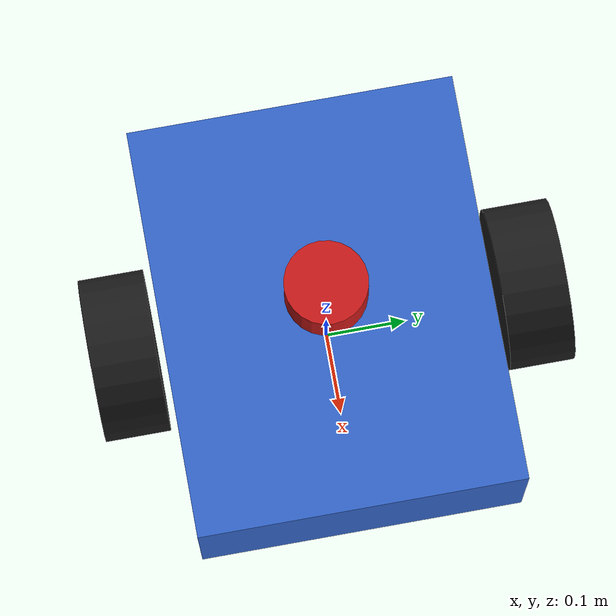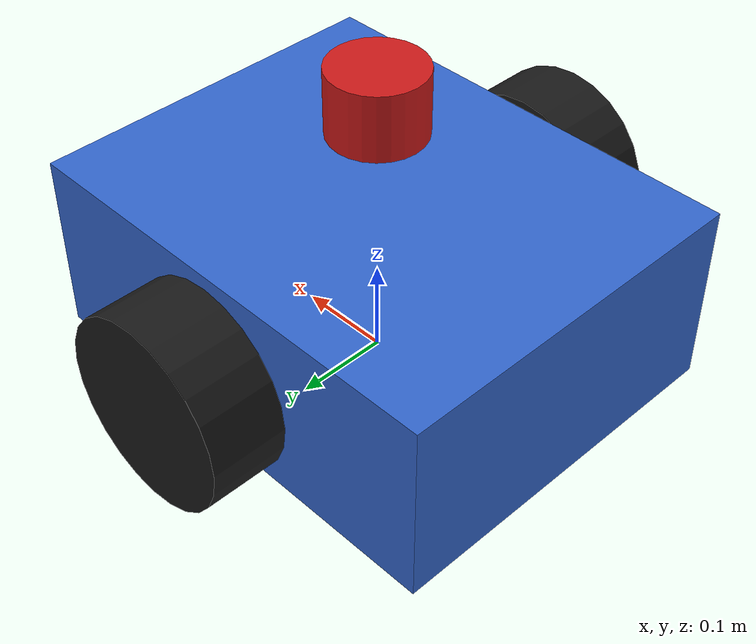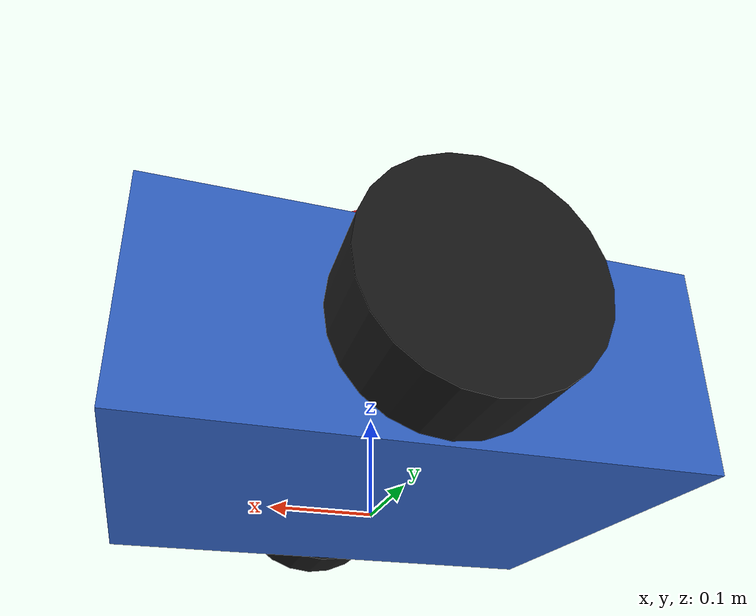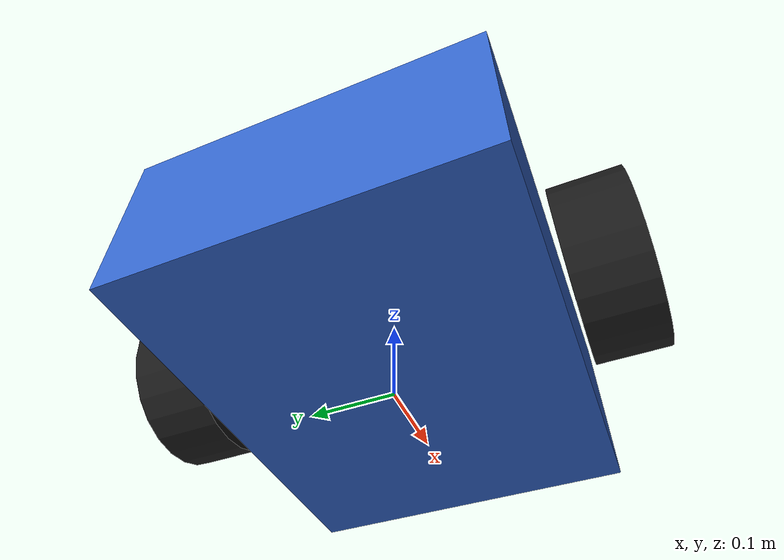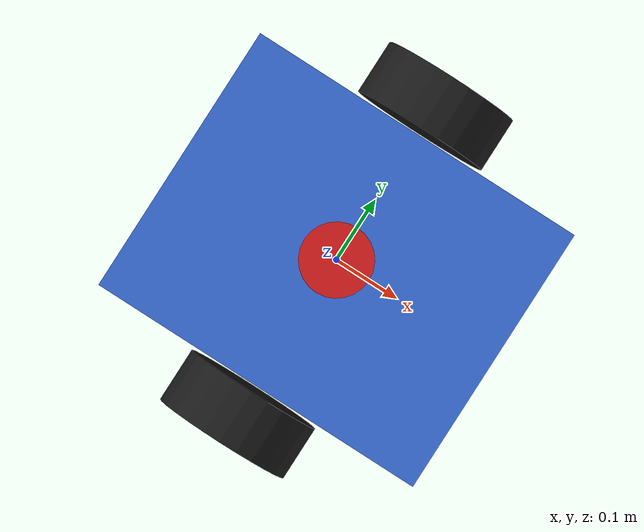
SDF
<?xml version="1.0"?>
<sdf version="1.6">
  <model name="rover">

    <!-- Base Link - CENTER OF ROBOT -->
    <link name="base_link">
      <pose>0 0 0.1 0 0 0</pose>
      <inertial>
        <mass>10.0</mass>
        <pose>0 0 0 0 0 0</pose>
        <inertia>
          <ixx>0.1</ixx><ixy>0</ixy><ixz>0</ixz>
          <iyy>0.15</iyy><iyz>0</iyz><izz>0.2</izz>
        </inertia>
      </inertial>
      <collision name="collision">
        <geometry>
          <box><size>0.5 0.4 0.2</size></box>
        </geometry>
      </collision>
      <visual name="visual">
        <geometry>
          <box><size>0.5 0.4 0.2</size></box>
        </geometry>
        <material>
          <ambient>0.2 0.4 0.8 1</ambient>
          <diffuse>0.2 0.4 0.8 1</diffuse>
        </material>
      </visual>
    </link>

    <!-- Left Drive Wheel - AT CENTER, LEFT SIDE -->
    <link name="left_wheel">
      <pose>0 0.25 0.1 -1.5707963 0 0</pose>
      <inertial>
        <mass>1.0</mass>
        <inertia>
          <ixx>0.005</ixx><ixy>0</ixy><ixz>0</ixz>
          <iyy>0.005</iyy><iyz>0</iyz><izz>0.005</izz>
        </inertia>
      </inertial>
      <collision name="collision">
        <geometry>
          <cylinder><radius>0.1</radius><length>0.08</length></cylinder>
        </geometry>
        <surface>
          <friction>
            <ode>
              <mu>100.0</mu>
              <mu2>50.0</mu2>
            </ode>
          </friction>
          <contact>
            <ode>
              <kp>10000000.0</kp>
              <kd>1.0</kd>
            </ode>
          </contact>
        </surface>
      </collision>
      <visual name="visual">
        <geometry>
          <cylinder><radius>0.1</radius><length>0.08</length></cylinder>
        </geometry>
        <material>
          <ambient>0.1 0.1 0.1 1</ambient>
          <diffuse>0.1 0.1 0.1 1</diffuse>
        </material>
      </visual>
    </link>

    <joint name="left_wheel_joint" type="revolute">
      <parent>base_link</parent>
      <child>left_wheel</child>
      <axis>
        <xyz>0 0 1</xyz>
      </axis>
    </joint>

    <!-- Right Drive Wheel - AT CENTER, RIGHT SIDE -->
    <link name="right_wheel">
      <pose>0 -0.25 0.1 -1.5707963 0 0</pose>
      <inertial>
        <mass>1.0</mass>
        <inertia>
          <ixx>0.005</ixx><ixy>0</ixy><ixz>0</ixz>
          <iyy>0.005</iyy><iyz>0</iyz><izz>0.005</izz>
        </inertia>
      </inertial>
      <collision name="collision">
        <geometry>
          <cylinder><radius>0.1</radius><length>0.08</length></cylinder>
        </geometry>
        <surface>
          <friction>
            <ode>
              <mu>100.0</mu>
              <mu2>50.0</mu2>
            </ode>
          </friction>
          <contact>
            <ode>
              <kp>10000000.0</kp>
              <kd>1.0</kd>
            </ode>
          </contact>
        </surface>
      </collision>
      <visual name="visual">
        <geometry>
          <cylinder><radius>0.1</radius><length>0.08</length></cylinder>
        </geometry>
        <material>
          <ambient>0.1 0.1 0.1 1</ambient>
          <diffuse>0.1 0.1 0.1 1</diffuse>
        </material>
      </visual>
    </link>

    <joint name="right_wheel_joint" type="revolute">
      <parent>base_link</parent>
      <child>right_wheel</child>
      <axis>
        <xyz>0 0 1</xyz>
      </axis>
    </joint>

    <!-- Caster Wheel - AT BACK FOR STABILITY -->
    <link name="caster_wheel">
      <pose>-0.2 0 0.05 0 0 0</pose>
      <inertial>
        <mass>0.5</mass>
        <inertia>
          <ixx>0.001</ixx><ixy>0</ixy><ixz>0</ixz>
          <iyy>0.001</iyy><iyz>0</iyz><izz>0.001</izz>
        </inertia>
      </inertial>
      <collision name="collision">
        <geometry>
          <sphere><radius>0.05</radius></sphere>
        </geometry>
        <surface>
          <friction>
            <ode>
              <mu>0.001</mu>
              <mu2>0.001</mu2>
            </ode>
          </friction>
          <contact>
            <ode>
              <kp>10000000.0</kp>
              <kd>1.0</kd>
            </ode>
          </contact>
        </surface>
      </collision>
      <visual name="visual">
        <geometry>
          <sphere><radius>0.05</radius></sphere>
        </geometry>
        <material>
          <ambient>0.3 0.3 0.3 1</ambient>
          <diffuse>0.3 0.3 0.3 1</diffuse>
        </material>
      </visual>
    </link>

    <joint name="caster_wheel_joint" type="fixed">
      <parent>base_link</parent>
      <child>caster_wheel</child>
    </joint>

    <!-- LiDAR on top -->
    <link name="lidar_link">
      <pose>0 0 0.3 0 0 0</pose>
      <inertial>
        <mass>0.3</mass>
        <inertia>
          <ixx>0.0001</ixx><ixy>0</ixy><ixz>0</ixz>
          <iyy>0.0001</iyy><iyz>0</iyz><izz>0.0001</izz>
        </inertia>
      </inertial>
      <collision name="collision">
        <geometry>
          <cylinder><radius>0.05</radius><length>0.07</length></cylinder>
        </geometry>
      </collision>
      <visual name="visual">
        <geometry>
          <cylinder><radius>0.05</radius><length>0.07</length></cylinder>
        </geometry>
        <material>
          <ambient>0.8 0.1 0.1 1</ambient>
          <diffuse>0.8 0.1 0.1 1</diffuse>
        </material>
      </visual>

      <sensor name="lidar_sensor" type="ray">
        <always_on>true</always_on>
        <update_rate>10</update_rate>
        <visualize>true</visualize>
        <ray>
          <scan>
            <horizontal>
              <samples>360</samples>
              <resolution>1</resolution>
              <min_angle>-3.14159</min_angle>
              <max_angle>3.14159</max_angle>
            </horizontal>
          </scan>
          <range>
            <min>0.15</min>
            <max>12.0</max>
            <resolution>0.01</resolution>
          </range>
          <noise>
            <type>gaussian</type>
            <mean>0.0</mean>
            <stddev>0.01</stddev>
          </noise>
        </ray>
        <plugin name="scan" filename="libgazebo_ros_ray_sensor.so">
          <ros>
            <remapping>~/out:=scan</remapping>
          </ros>
          <output_type>sensor_msgs/LaserScan</output_type>
          <frame_name>lidar_link</frame_name>
        </plugin>
      </sensor>
    </link>

    <joint name="lidar_joint" type="fixed">
      <parent>base_link</parent>
      <child>lidar_link</child>
    </joint>

    <!-- Differential Drive Controller Plugin -->
    <plugin name="diff_drive" filename="libgazebo_ros_diff_drive.so">
      <update_rate>50</update_rate>
      <left_joint>left_wheel_joint</left_joint>
      <right_joint>right_wheel_joint</right_joint>
      <wheel_separation>0.5</wheel_separation>
      <wheel_diameter>0.2</wheel_diameter>
      <max_wheel_torque>50</max_wheel_torque>
      <max_wheel_acceleration>2.0</max_wheel_acceleration>
      <command_topic>cmd_vel</command_topic>
      <publish_odom>true</publish_odom>
      <publish_odom_tf>true</publish_odom_tf>
      <publish_wheel_tf>false</publish_wheel_tf>
      <odometry_topic>odom</odometry_topic>
      <odometry_frame>odom</odometry_frame>
      <robot_base_frame>base_link</robot_base_frame>
    </plugin>

  </model>
</sdf>
